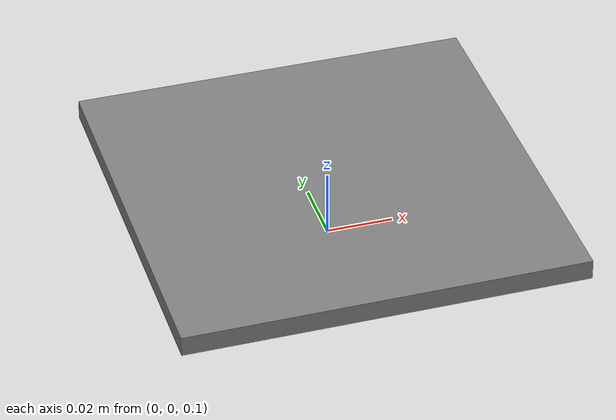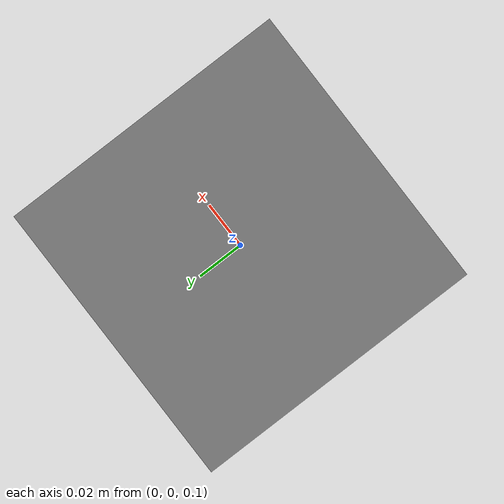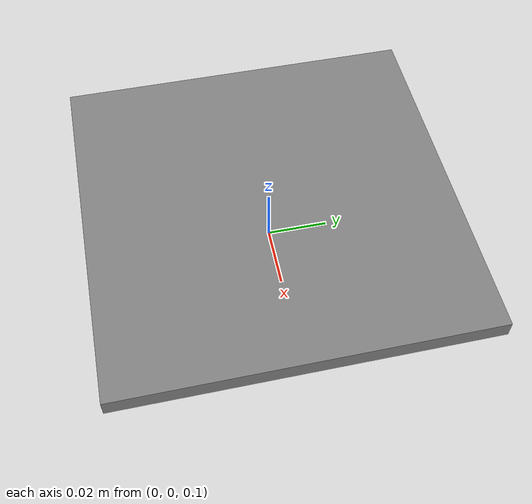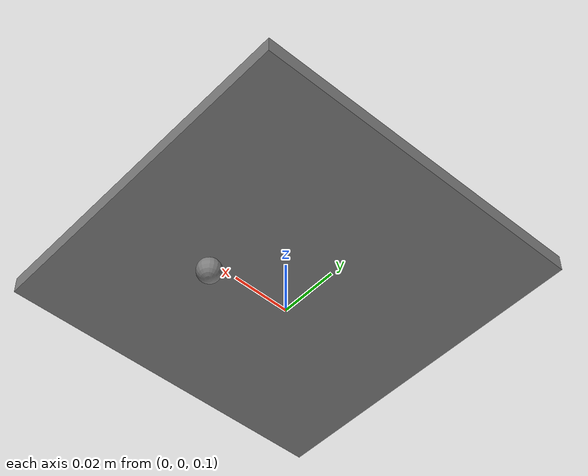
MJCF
<mujoco>
  <option gravity="0 0 -9.81" timestep="0.001"/>
  <worldbody>
    <body name="body" pos="0 0 0.116">
      <freejoint/>
      <geom type="box" pos="0 0 0" size="0.06 0.06 0.003" mass="0.05"/>
      <geom type="sphere" pos="0.03 0 -0.02" size="0.004" mass="0.3"/>
    </body>
  </worldbody>
</mujoco>
